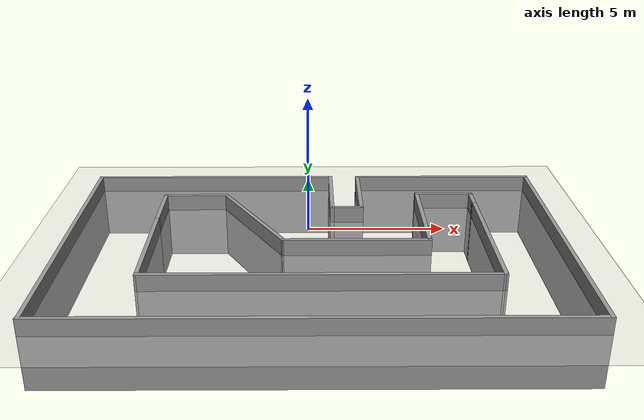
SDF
<sdf version="1.7">
 <world name="default">
  <light name="sun" type="directional">
   <pose>0 0 10 0 -0 0</pose>
   <diffuse>0.8 0.8 0.8 1</diffuse>
   <specular>0.2 0.2 0.2 1</specular>
   <attenuation>
    <range>1000</range>
    <constant>0.9</constant>
    <linear>0.01</linear>
    <quadratic>0.001</quadratic>
   </attenuation>
   <direction>-0.5 0.1 -0.9</direction>
   <spot><inner_angle>0</inner_angle><outer_angle>0</outer_angle><falloff>0</falloff></spot>
  </light>
  <model name="ground_plane">
   <static>1</static>
   <link name="link">
    <collision name="collision">
     <geometry><plane><normal>0 0 1</normal><size>100 100</size></plane></geometry>
     <surface>
      <contact><collide_bitmask>65535</collide_bitmask></contact>
      <friction><ode><mu>100</mu><mu2>50</mu2></ode></friction>
     </surface>
    </collision>
    <visual name="visual">
     <cast_shadows>0</cast_shadows>
     <geometry><plane><normal>0 0 1</normal><size>100 100</size></plane></geometry>
     <material>
      <script><uri>file://media/materials/scripts/gazebo.material</uri><name>Gazebo/Grey</name></script>
     </material>
    </visual>
   </link>
  </model>
  <gravity>0 0 -9.8</gravity>
  <magnetic_field>6e-06 2.3e-05 -4.2e-05</magnetic_field>
  <atmosphere type="adiabatic"/>
  <physics type="ode">
   <max_step_size>0.001</max_step_size>
   <real_time_factor>1</real_time_factor>
   <real_time_update_rate>1000</real_time_update_rate>
  </physics>
  <scene><ambient>0.4 0.4 0.4 1</ambient><background>0.7 0.7 0.7 1</background><shadows>1</shadows></scene>
  <spherical_coordinates>
   <surface_model>EARTH_WGS84</surface_model>
   <latitude_deg>0</latitude_deg>
   <longitude_deg>0</longitude_deg>
   <elevation>0</elevation>
   <heading_deg>0</heading_deg>
  </spherical_coordinates>
  <model name="one_hairpin">
   <pose>0.21728 -1.69559 -1.9267 0 -0 0</pose>
   <link name="Wall_56">
    <collision name="Wall_56_Collision">
     <geometry><box><size>7 0.15 2.5</size></box></geometry>
     <pose>0 0 1.25 0 -0 0</pose>
    </collision>
    <visual name="Wall_56_Visual">
     <pose>0 0 1.25 0 -0 0</pose>
     <geometry><box><size>7 0.15 2.5</size></box></geometry>
     <material>
      <script><uri>file://media/materials/scripts/gazebo.material</uri><name>Gazebo/Grey</name></script>
      <ambient>1 1 1 1</ambient>
     </material>
     <meta><layer>0</layer></meta>
    </visual>
    <pose>5.21301 5.55851 0 0 -0 3.14159</pose>
   </link>
   <link name="Wall_57">
    <collision name="Wall_57_Collision">
     <geometry><box><size>3.25 0.15 2.5</size></box></geometry>
     <pose>0 0 1.25 0 -0 0</pose>
    </collision>
    <visual name="Wall_57_Visual">
     <pose>0 0 1.25 0 -0 0</pose>
     <geometry><box><size>3.25 0.15 2.5</size></box></geometry>
     <material>
      <script><uri>file://media/materials/scripts/gazebo.material</uri><name>Gazebo/Grey</name></script>
      <ambient>1 1 1 1</ambient>
     </material>
     <meta><layer>0</layer></meta>
    </visual>
    <pose>1.78801 4.00851 0 0 -0 -1.5708</pose>
   </link>
   <link name="Wall_58">
    <collision name="Wall_58_Collision">
     <geometry><box><size>1.25 0.15 2.5</size></box></geometry>
     <pose>0 0 1.25 0 -0 0</pose>
    </collision>
    <visual name="Wall_58_Visual">
     <pose>0 0 1.25 0 -0 0</pose>
     <geometry><box><size>1.25 0.15 2.5</size></box></geometry>
     <material>
      <script><uri>file://media/materials/scripts/gazebo.material</uri><name>Gazebo/Grey</name></script>
      <ambient>1 1 1 1</ambient>
     </material>
     <meta><layer>0</layer></meta>
    </visual>
    <pose>1.23801 2.45851 0 0 -0 3.14159</pose>
   </link>
   <link name="Wall_59">
    <collision name="Wall_59_Collision">
     <geometry><box><size>3.25 0.15 2.5</size></box></geometry>
     <pose>0 0 1.25 0 -0 0</pose>
    </collision>
    <visual name="Wall_59_Visual">
     <pose>0 0 1.25 0 -0 0</pose>
     <geometry><box><size>3.25 0.15 2.5</size></box></geometry>
     <material>
      <script><uri>file://media/materials/scripts/gazebo.material</uri><name>Gazebo/Grey</name></script>
      <ambient>1 1 1 1</ambient>
     </material>
     <meta><layer>0</layer></meta>
    </visual>
    <pose>0.688005 4.00851 0 0 -0 1.5708</pose>
   </link>
   <link name="Wall_60">
    <collision name="Wall_60_Collision">
     <geometry><box><size>9.5 0.15 2.5</size></box></geometry>
     <pose>0 0 1.25 0 -0 0</pose>
    </collision>
    <visual name="Wall_60_Visual">
     <pose>0 0 1.25 0 -0 0</pose>
     <geometry><box><size>9.5 0.15 2.5</size></box></geometry>
     <material>
      <script><uri>file://media/materials/scripts/gazebo.material</uri><name>Gazebo/Grey</name></script>
      <ambient>1 1 1 1</ambient>
     </material>
     <meta><layer>0</layer></meta>
    </visual>
    <pose>-3.98699 5.55851 0 0 -0 3.14159</pose>
   </link>
   <link name="Wall_67">
    <collision name="Wall_67_Collision">
     <geometry><box><size>1 0.15 2.5</size></box></geometry>
     <pose>0 0 1.25 0 -0 0</pose>
    </collision>
    <visual name="Wall_67_Visual">
     <pose>0 0 1.25 0 -0 0</pose>
     <geometry><box><size>1 0.15 2.5</size></box></geometry>
     <material>
      <script><uri>file://media/materials/scripts/gazebo.material</uri><name>Gazebo/Grey</name></script>
      <ambient>1 1 1 1</ambient>
     </material>
     <meta><layer>0</layer></meta>
    </visual>
    <pose>6.11104 3.32636 0 0 -0 1.5708</pose>
   </link>
   <link name="Wall_68">
    <collision name="Wall_68_Collision">
     <geometry><box><size>2.25 0.15 2.5</size></box></geometry>
     <pose>0 0 1.25 0 -0 0</pose>
    </collision>
    <visual name="Wall_68_Visual">
     <pose>0 0 1.25 0 -0 0</pose>
     <geometry><box><size>2.25 0.15 2.5</size></box></geometry>
     <material>
      <script><uri>file://media/materials/scripts/gazebo.material</uri><name>Gazebo/Grey</name></script>
      <ambient>1 1 1 1</ambient>
     </material>
     <meta><layer>0</layer></meta>
    </visual>
    <pose>5.06104 3.75136 0 0 -0 3.14159</pose>
   </link>
   <link name="Wall_69">
    <collision name="Wall_69_Collision">
     <geometry><box><size>4.25 0.15 2.5</size></box></geometry>
     <pose>0 0 1.25 0 -0 0</pose>
    </collision>
    <visual name="Wall_69_Visual">
     <pose>0 0 1.25 0 -0 0</pose>
     <geometry><box><size>4.25 0.15 2.5</size></box></geometry>
     <material>
      <script><uri>file://media/materials/scripts/gazebo.material</uri><name>Gazebo/Grey</name></script>
      <ambient>1 1 1 1</ambient>
     </material>
     <meta><layer>0</layer></meta>
    </visual>
    <pose>4.01104 1.70136 0 0 -0 -1.5708</pose>
   </link>
   <link name="Wall_70">
    <collision name="Wall_70_Collision">
     <geometry><box><size>5.25 0.15 2.5</size></box></geometry>
     <pose>0 0 1.25 0 -0 0</pose>
    </collision>
    <visual name="Wall_70_Visual">
     <pose>0 0 1.25 0 -0 0</pose>
     <geometry><box><size>5.25 0.15 2.5</size></box></geometry>
     <material>
      <script><uri>file://media/materials/scripts/gazebo.material</uri><name>Gazebo/Grey</name></script>
      <ambient>1 1 1 1</ambient>
     </material>
     <meta><layer>0</layer></meta>
    </visual>
    <pose>1.46104 -0.348638 0 0 -0 3.14159</pose>
   </link>
   <link name="Wall_71">
    <collision name="Wall_71_Collision">
     <geometry><box><size>4.75 0.15 2.5</size></box></geometry>
     <pose>0 0 1.25 0 -0 0</pose>
    </collision>
    <visual name="Wall_71_Visual">
     <pose>0 0 1.25 0 -0 0</pose>
     <geometry><box><size>4.75 0.15 2.5</size></box></geometry>
     <material>
      <script><uri>file://media/materials/scripts/gazebo.material</uri><name>Gazebo/Grey</name></script>
      <ambient>1 1 1 1</ambient>
     </material>
     <meta><layer>0</layer></meta>
    </visual>
    <pose>-2.23896 1.64322 0 0 -0 2.0944</pose>
   </link>
   <link name="Wall_72">
    <collision name="Wall_72_Collision">
     <geometry><box><size>2.5 0.15 2.5</size></box></geometry>
     <pose>0 0 1.25 0 -0 0</pose>
    </collision>
    <visual name="Wall_72_Visual">
     <pose>0 0 1.25 0 -0 0</pose>
     <geometry><box><size>2.5 0.15 2.5</size></box></geometry>
     <material>
      <script><uri>file://media/materials/scripts/gazebo.material</uri><name>Gazebo/Grey</name></script>
      <ambient>1 1 1 1</ambient>
     </material>
     <meta><layer>0</layer></meta>
    </visual>
    <pose>-4.56396 3.63508 0 0 -0 3.14159</pose>
   </link>
   <link name="Wall_73">
    <collision name="Wall_73_Collision">
     <geometry><box><size>2.25 0.15 2.5</size></box></geometry>
     <pose>0 0 1.25 0 -0 0</pose>
    </collision>
    <visual name="Wall_73_Visual">
     <pose>0 0 1.25 0 -0 0</pose>
     <geometry><box><size>2.25 0.15 2.5</size></box></geometry>
     <material>
      <script><uri>file://media/materials/scripts/gazebo.material</uri><name>Gazebo/Grey</name></script>
      <ambient>1 1 1 1</ambient>
     </material>
     <meta><layer>0</layer></meta>
    </visual>
    <pose>-5.73896 2.58508 0 0 -0 -1.5708</pose>
   </link>
   <link name="Wall_78">
    <collision name="Wall_78_Collision">
     <geometry><box><size>12 0.15 2.5</size></box></geometry>
     <pose>0 0 1.25 0 -0 0</pose>
    </collision>
    <visual name="Wall_78_Visual">
     <pose>0 0 1.25 0 -0 0</pose>
     <geometry><box><size>12 0.15 2.5</size></box></geometry>
     <material>
      <script><uri>file://media/materials/scripts/gazebo.material</uri><name>Gazebo/Grey</name></script>
      <ambient>1 1 1 1</ambient>
     </material>
     <meta><layer>0</layer></meta>
    </visual>
    <pose>0.206971 -2.87087 0 0 -0 0</pose>
   </link>
   <link name="Wall_80">
    <collision name="Wall_80_Collision">
     <geometry><box><size>5.92227 0.15 2.5</size></box></geometry>
     <pose>0 0 1.25 0 -0 0</pose>
    </collision>
    <visual name="Wall_80_Visual">
     <pose>0 0 1.25 0 -0 0</pose>
     <geometry><box><size>5.92227 0.15 2.5</size></box></geometry>
     <material>
      <script><uri>file://media/materials/scripts/gazebo.material</uri><name>Gazebo/Grey</name></script>
      <ambient>1 1 1 1</ambient>
     </material>
     <meta><layer>0</layer></meta>
    </visual>
    <pose>6.1215 0.015247 0 0 -0 -1.56717</pose>
   </link>
   <link name="Wall_83">
    <collision name="Wall_83_Collision">
     <geometry><box><size>4.556 0.15 2.5</size></box></geometry>
     <pose>0 0 1.25 0 -0 0</pose>
    </collision>
    <visual name="Wall_83_Visual">
     <pose>0 0 1.25 0 -0 0</pose>
     <geometry><box><size>4.556 0.15 2.5</size></box></geometry>
     <material>
      <script><uri>file://media/materials/scripts/gazebo.material</uri><name>Gazebo/Grey</name></script>
      <ambient>1 1 1 1</ambient>
     </material>
     <meta><layer>0</layer></meta>
    </visual>
    <pose>-5.7285 -0.667895 0 0 -0 -1.56604</pose>
   </link>
   <link name="Wall_87">
    <collision name="Wall_87_Collision">
     <geometry><box><size>17.5 0.15 2.5</size></box></geometry>
     <pose>0 0 1.25 0 -0 0</pose>
    </collision>
    <visual name="Wall_87_Visual">
     <pose>0 0 1.25 0 -0 0</pose>
     <geometry><box><size>17.5 0.15 2.5</size></box></geometry>
     <material>
      <script><uri>file://media/materials/scripts/gazebo.material</uri><name>Gazebo/Grey</name></script>
      <ambient>1 1 1 1</ambient>
     </material>
     <meta><layer>0</layer></meta>
    </visual>
    <pose>-0 -5.55851 0 0 -0 0</pose>
   </link>
   <link name="Wall_89">
    <collision name="Wall_89_Collision">
     <geometry><box><size>11.25 0.15 2.5</size></box></geometry>
     <pose>0 0 1.25 0 -0 0</pose>
    </collision>
    <visual name="Wall_89_Visual">
     <pose>0 0 1.25 0 -0 0</pose>
     <geometry><box><size>11.25 0.15 2.5</size></box></geometry>
     <material>
      <script><uri>file://media/materials/scripts/gazebo.material</uri><name>Gazebo/Grey</name></script>
      <ambient>1 1 1 1</ambient>
     </material>
     <meta><layer>0</layer></meta>
    </visual>
    <pose>8.675 -0.008505 0 0 -0 1.5708</pose>
   </link>
   <link name="Wall_91">
    <collision name="Wall_91_Collision">
     <geometry><box><size>11.25 0.15 2.5</size></box></geometry>
     <pose>0 0 1.25 0 -0 0</pose>
    </collision>
    <visual name="Wall_91_Visual">
     <pose>0 0 1.25 0 -0 0</pose>
     <geometry><box><size>11.25 0.15 2.5</size></box></geometry>
     <material>
      <script><uri>file://media/materials/scripts/gazebo.material</uri><name>Gazebo/Grey</name></script>
      <ambient>1 1 1 1</ambient>
     </material>
     <meta><layer>0</layer></meta>
    </visual>
    <pose>-8.66199 0.008505 0 0 -0 -1.5708</pose>
   </link>
   <static>1</static>
  </model>
 </world>
</sdf>
